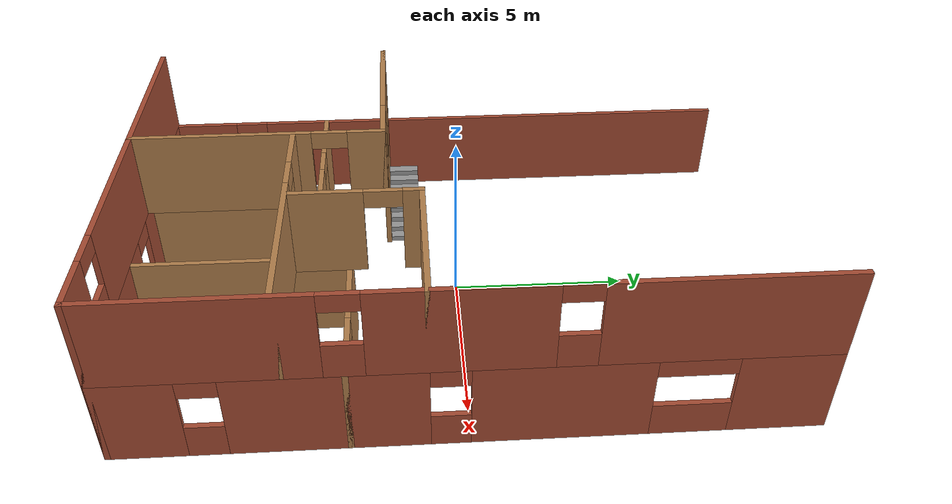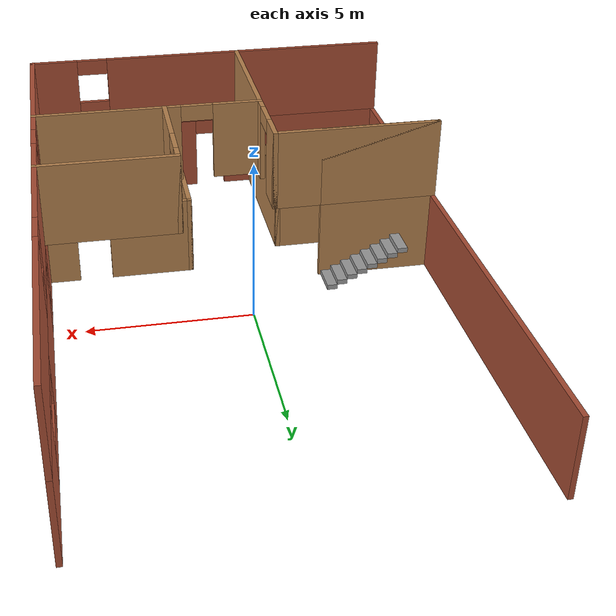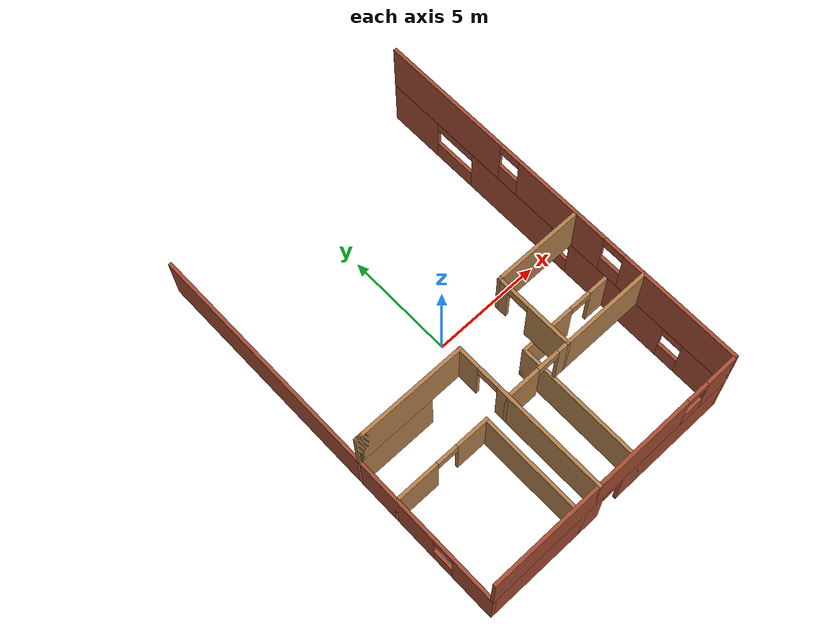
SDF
<sdf version="1.6">
 <model name="demo_model">
  <static>1</static>
  <link name="demo_wall_1_1">
   <pose>0 -9.0 0         0 0 0</pose>
   <visual name="demo_wall_1_1_0_left_visual">
    <pose>-3.2875 0 1.25 -0 0 0</pose>
    <geometry><box><size>5.575 0.15 2.5</size></box></geometry>
    <material>
     <script><uri>file://media/materials/scripts/gazebo.material</uri><name>Gazebo/Bricks</name></script>
    </material>
    <meta><layer>0</layer></meta>
   </visual>
   <collision name="demo_wall_1_1_0_left_collision">
    <pose>-3.2875 0 1.25 -0 0 0</pose>
    <geometry><box><size>5.575 0.15 2.5</size></box></geometry>
    <surface>
     <bounce><threshold>1e+06</threshold></bounce>
     <contact><ode><kp>1e+13</kp></ode><bullet><kp>1e+13</kp></bullet></contact>
    </surface>
   </collision>
   <visual name="demo_wall_1_1_0_up_visual">
    <pose>0.0 0 2.25 -0 0 0</pose>
    <geometry><box><size>1.0 0.15 0.5</size></box></geometry>
    <material>
     <script><uri>file://media/materials/scripts/gazebo.material</uri><name>Gazebo/Bricks</name></script>
    </material>
    <meta><layer>0</layer></meta>
   </visual>
   <collision name="demo_wall_1_1_0_up_collision">
    <pose>0.0 0 2.25 -0 0 0</pose>
    <geometry><box><size>1.0 0.15 0.5</size></box></geometry>
    <surface>
     <bounce><threshold>1e+06</threshold></bounce>
     <contact><ode><kp>1e+13</kp></ode><bullet><kp>1e+13</kp></bullet></contact>
    </surface>
   </collision>
   <visual name="demo_wall_1_1_0_right_visual">
    <pose>3.2874999999999996 0 1.25 -0 0 0</pose>
    <geometry><box><size>5.575 0.15 2.5</size></box></geometry>
    <material>
     <script><uri>file://media/materials/scripts/gazebo.material</uri><name>Gazebo/Bricks</name></script>
    </material>
    <meta><layer>0</layer></meta>
   </visual>
   <collision name="demo_wall_1_1_0_right_collision">
    <pose>3.2874999999999996 0 1.25 -0 0 0</pose>
    <geometry><box><size>5.575 0.15 2.5</size></box></geometry>
    <surface>
     <bounce><threshold>1e+06</threshold></bounce>
     <contact><ode><kp>1e+13</kp></ode><bullet><kp>1e+13</kp></bullet></contact>
    </surface>
   </collision>
  </link>
  <link name="demo_wall_1_2">
   <pose>6.0 0 0         0 0 1.5707963267948966</pose>
   <visual name="demo_wall_1_2_0_left_visual">
    <pose>-8.0375 0 1.25 -0 0 0</pose>
    <geometry><box><size>2.075 0.15 2.5</size></box></geometry>
    <material>
     <script><uri>file://media/materials/scripts/gazebo.material</uri><name>Gazebo/Bricks</name></script>
    </material>
    <meta><layer>0</layer></meta>
   </visual>
   <collision name="demo_wall_1_2_0_left_collision">
    <pose>-8.0375 0 1.25 -0 0 0</pose>
    <geometry><box><size>2.075 0.15 2.5</size></box></geometry>
    <surface>
     <bounce><threshold>1e+06</threshold></bounce>
     <contact><ode><kp>1e+13</kp></ode><bullet><kp>1e+13</kp></bullet></contact>
    </surface>
   </collision>
   <visual name="demo_wall_1_2_0_up_visual">
    <pose>-6.5 0 2.25 -0 0 0</pose>
    <geometry><box><size>1 0.15 0.5</size></box></geometry>
    <material>
     <script><uri>file://media/materials/scripts/gazebo.material</uri><name>Gazebo/Bricks</name></script>
    </material>
    <meta><layer>0</layer></meta>
   </visual>
   <collision name="demo_wall_1_2_0_up_collision">
    <pose>-6.5 0 2.25 -0 0 0</pose>
    <geometry><box><size>1 0.15 0.5</size></box></geometry>
    <surface>
     <bounce><threshold>1e+06</threshold></bounce>
     <contact><ode><kp>1e+13</kp></ode><bullet><kp>1e+13</kp></bullet></contact>
    </surface>
   </collision>
   <visual name="demo_wall_1_2_0_down_visual">
    <pose>-6.5 0 0.5 -0 0 0</pose>
    <geometry><box><size>1 0.15 1</size></box></geometry>
    <material>
     <script><uri>file://media/materials/scripts/gazebo.material</uri><name>Gazebo/Bricks</name></script>
    </material>
    <meta><layer>0</layer></meta>
   </visual>
   <collision name="demo_wall_1_2_0_down_collision">
    <pose>-6.5 0 0.5 -0 0 0</pose>
    <geometry><box><size>1 0.15 1</size></box></geometry>
    <surface>
     <bounce><threshold>1e+06</threshold></bounce>
     <contact><ode><kp>1e+13</kp></ode><bullet><kp>1e+13</kp></bullet></contact>
    </surface>
   </collision>
   <visual name="demo_wall_1_2_1_left_visual">
    <pose>-3.5 0 1.25 -0 0 0</pose>
    <geometry><box><size>5 0.15 2.5</size></box></geometry>
    <material>
     <script><uri>file://media/materials/scripts/gazebo.material</uri><name>Gazebo/Bricks</name></script>
    </material>
    <meta><layer>0</layer></meta>
   </visual>
   <collision name="demo_wall_1_2_1_left_collision">
    <pose>-3.5 0 1.25 -0 0 0</pose>
    <geometry><box><size>5 0.15 2.5</size></box></geometry>
    <surface>
     <bounce><threshold>1e+06</threshold></bounce>
     <contact><ode><kp>1e+13</kp></ode><bullet><kp>1e+13</kp></bullet></contact>
    </surface>
   </collision>
   <visual name="demo_wall_1_2_1_up_visual">
    <pose>-0.5 0 2.25 -0 0 0</pose>
    <geometry><box><size>1 0.15 0.5</size></box></geometry>
    <material>
     <script><uri>file://media/materials/scripts/gazebo.material</uri><name>Gazebo/Bricks</name></script>
    </material>
    <meta><layer>0</layer></meta>
   </visual>
   <collision name="demo_wall_1_2_1_up_collision">
    <pose>-0.5 0 2.25 -0 0 0</pose>
    <geometry><box><size>1 0.15 0.5</size></box></geometry>
    <surface>
     <bounce><threshold>1e+06</threshold></bounce>
     <contact><ode><kp>1e+13</kp></ode><bullet><kp>1e+13</kp></bullet></contact>
    </surface>
   </collision>
   <visual name="demo_wall_1_2_1_down_visual">
    <pose>-0.5 0 0.5 -0 0 0</pose>
    <geometry><box><size>1 0.15 1</size></box></geometry>
    <material>
     <script><uri>file://media/materials/scripts/gazebo.material</uri><name>Gazebo/Bricks</name></script>
    </material>
    <meta><layer>0</layer></meta>
   </visual>
   <collision name="demo_wall_1_2_1_down_collision">
    <pose>-0.5 0 0.5 -0 0 0</pose>
    <geometry><box><size>1 0.15 1</size></box></geometry>
    <surface>
     <bounce><threshold>1e+06</threshold></bounce>
     <contact><ode><kp>1e+13</kp></ode><bullet><kp>1e+13</kp></bullet></contact>
    </surface>
   </collision>
   <visual name="demo_wall_1_2_2_left_visual">
    <pose>2.25 0 1.25 -0 0 0</pose>
    <geometry><box><size>4.5 0.15 2.5</size></box></geometry>
    <material>
     <script><uri>file://media/materials/scripts/gazebo.material</uri><name>Gazebo/Bricks</name></script>
    </material>
    <meta><layer>0</layer></meta>
   </visual>
   <collision name="demo_wall_1_2_2_left_collision">
    <pose>2.25 0 1.25 -0 0 0</pose>
    <geometry><box><size>4.5 0.15 2.5</size></box></geometry>
    <surface>
     <bounce><threshold>1e+06</threshold></bounce>
     <contact><ode><kp>1e+13</kp></ode><bullet><kp>1e+13</kp></bullet></contact>
    </surface>
   </collision>
   <visual name="demo_wall_1_2_2_up_visual">
    <pose>5.5 0 2.25 -0 0 0</pose>
    <geometry><box><size>2.0 0.15 0.5</size></box></geometry>
    <material>
     <script><uri>file://media/materials/scripts/gazebo.material</uri><name>Gazebo/Bricks</name></script>
    </material>
    <meta><layer>0</layer></meta>
   </visual>
   <collision name="demo_wall_1_2_2_up_collision">
    <pose>5.5 0 2.25 -0 0 0</pose>
    <geometry><box><size>2.0 0.15 0.5</size></box></geometry>
    <surface>
     <bounce><threshold>1e+06</threshold></bounce>
     <contact><ode><kp>1e+13</kp></ode><bullet><kp>1e+13</kp></bullet></contact>
    </surface>
   </collision>
   <visual name="demo_wall_1_2_2_down_visual">
    <pose>5.5 0 0.5 -0 0 0</pose>
    <geometry><box><size>2.0 0.15 1</size></box></geometry>
    <material>
     <script><uri>file://media/materials/scripts/gazebo.material</uri><name>Gazebo/Bricks</name></script>
    </material>
    <meta><layer>0</layer></meta>
   </visual>
   <collision name="demo_wall_1_2_2_down_collision">
    <pose>5.5 0 0.5 -0 0 0</pose>
    <geometry><box><size>2.0 0.15 1</size></box></geometry>
    <surface>
     <bounce><threshold>1e+06</threshold></bounce>
     <contact><ode><kp>1e+13</kp></ode><bullet><kp>1e+13</kp></bullet></contact>
    </surface>
   </collision>
   <visual name="demo_wall_1_2_2_right_visual">
    <pose>7.787500000000001 0 1.25 -0 0 0</pose>
    <geometry><box><size>2.575 0.15 2.5</size></box></geometry>
    <material>
     <script><uri>file://media/materials/scripts/gazebo.material</uri><name>Gazebo/Bricks</name></script>
    </material>
    <meta><layer>0</layer></meta>
   </visual>
   <collision name="demo_wall_1_2_2_right_collision">
    <pose>7.787500000000001 0 1.25 -0 0 0</pose>
    <geometry><box><size>2.575 0.15 2.5</size></box></geometry>
    <surface>
     <bounce><threshold>1e+06</threshold></bounce>
     <contact><ode><kp>1e+13</kp></ode><bullet><kp>1e+13</kp></bullet></contact>
    </surface>
   </collision>
  </link>
  <link name="demo_wall_1_4">
   <pose>-6.0 0 0         0 0 -1.5707963267948966</pose>
   <visual name="demo_wall_1_4_0_left_visual">
    <pose>-1.5374999999999996 0 1.25 -0 0 0</pose>
    <geometry><box><size>15.075 0.15 2.5</size></box></geometry>
    <material>
     <script><uri>file://media/materials/scripts/gazebo.material</uri><name>Gazebo/Bricks</name></script>
    </material>
    <meta><layer>0</layer></meta>
   </visual>
   <collision name="demo_wall_1_4_0_left_collision">
    <pose>-1.5374999999999996 0 1.25 -0 0 0</pose>
    <geometry><box><size>15.075 0.15 2.5</size></box></geometry>
    <surface>
     <bounce><threshold>1e+06</threshold></bounce>
     <contact><ode><kp>1e+13</kp></ode><bullet><kp>1e+13</kp></bullet></contact>
    </surface>
   </collision>
   <visual name="demo_wall_1_4_0_up_visual">
    <pose>6.5 0 2.25 -0 0 0</pose>
    <geometry><box><size>1 0.15 0.5</size></box></geometry>
    <material>
     <script><uri>file://media/materials/scripts/gazebo.material</uri><name>Gazebo/Bricks</name></script>
    </material>
    <meta><layer>0</layer></meta>
   </visual>
   <collision name="demo_wall_1_4_0_up_collision">
    <pose>6.5 0 2.25 -0 0 0</pose>
    <geometry><box><size>1 0.15 0.5</size></box></geometry>
    <surface>
     <bounce><threshold>1e+06</threshold></bounce>
     <contact><ode><kp>1e+13</kp></ode><bullet><kp>1e+13</kp></bullet></contact>
    </surface>
   </collision>
   <visual name="demo_wall_1_4_0_down_visual">
    <pose>6.5 0 0.5 -0 0 0</pose>
    <geometry><box><size>1 0.15 1</size></box></geometry>
    <material>
     <script><uri>file://media/materials/scripts/gazebo.material</uri><name>Gazebo/Bricks</name></script>
    </material>
    <meta><layer>0</layer></meta>
   </visual>
   <collision name="demo_wall_1_4_0_down_collision">
    <pose>6.5 0 0.5 -0 0 0</pose>
    <geometry><box><size>1 0.15 1</size></box></geometry>
    <surface>
     <bounce><threshold>1e+06</threshold></bounce>
     <contact><ode><kp>1e+13</kp></ode><bullet><kp>1e+13</kp></bullet></contact>
    </surface>
   </collision>
   <visual name="demo_wall_1_4_0_right_visual">
    <pose>8.037500000000001 0 1.25 -0 0 0</pose>
    <geometry><box><size>2.075 0.15 2.5</size></box></geometry>
    <material>
     <script><uri>file://media/materials/scripts/gazebo.material</uri><name>Gazebo/Bricks</name></script>
    </material>
    <meta><layer>0</layer></meta>
   </visual>
   <collision name="demo_wall_1_4_0_right_collision">
    <pose>8.037500000000001 0 1.25 -0 0 0</pose>
    <geometry><box><size>2.075 0.15 2.5</size></box></geometry>
    <surface>
     <bounce><threshold>1e+06</threshold></bounce>
     <contact><ode><kp>1e+13</kp></ode><bullet><kp>1e+13</kp></bullet></contact>
    </surface>
   </collision>
  </link>
  <link name="demo_wall_2_1">
   <pose>0 -9.0 2.5         0 0 0</pose>
   <visual name="demo_wall_2_1_0_left_visual">
    <pose>-1.2874999999999996 0 1.25 -0 0 0</pose>
    <geometry><box><size>9.575 0.15 2.5</size></box></geometry>
    <material>
     <script><uri>file://media/materials/scripts/gazebo.material</uri><name>Gazebo/Bricks</name></script>
    </material>
    <meta><layer>1</layer></meta>
   </visual>
   <collision name="demo_wall_2_1_0_left_collision">
    <pose>-1.2874999999999996 0 1.25 -0 0 0</pose>
    <geometry><box><size>9.575 0.15 2.5</size></box></geometry>
    <surface>
     <bounce><threshold>1e+06</threshold></bounce>
     <contact><ode><kp>1e+13</kp></ode><bullet><kp>1e+13</kp></bullet></contact>
    </surface>
   </collision>
   <visual name="demo_wall_2_1_0_up_visual">
    <pose>4.0 0 2.25 -0 0 0</pose>
    <geometry><box><size>1.0 0.15 0.5</size></box></geometry>
    <material>
     <script><uri>file://media/materials/scripts/gazebo.material</uri><name>Gazebo/Bricks</name></script>
    </material>
    <meta><layer>1</layer></meta>
   </visual>
   <collision name="demo_wall_2_1_0_up_collision">
    <pose>4.0 0 2.25 -0 0 0</pose>
    <geometry><box><size>1.0 0.15 0.5</size></box></geometry>
    <surface>
     <bounce><threshold>1e+06</threshold></bounce>
     <contact><ode><kp>1e+13</kp></ode><bullet><kp>1e+13</kp></bullet></contact>
    </surface>
   </collision>
   <visual name="demo_wall_2_1_0_down_visual">
    <pose>4.0 0 0.5 -0 0 0</pose>
    <geometry><box><size>1.0 0.15 1</size></box></geometry>
    <material>
     <script><uri>file://media/materials/scripts/gazebo.material</uri><name>Gazebo/Bricks</name></script>
    </material>
    <meta><layer>1</layer></meta>
   </visual>
   <collision name="demo_wall_2_1_0_down_collision">
    <pose>4.0 0 0.5 -0 0 0</pose>
    <geometry><box><size>1.0 0.15 1</size></box></geometry>
    <surface>
     <bounce><threshold>1e+06</threshold></bounce>
     <contact><ode><kp>1e+13</kp></ode><bullet><kp>1e+13</kp></bullet></contact>
    </surface>
   </collision>
   <visual name="demo_wall_2_1_0_right_visual">
    <pose>5.2875 0 1.25 -0 0 0</pose>
    <geometry><box><size>1.575 0.15 2.5</size></box></geometry>
    <material>
     <script><uri>file://media/materials/scripts/gazebo.material</uri><name>Gazebo/Bricks</name></script>
    </material>
    <meta><layer>1</layer></meta>
   </visual>
   <collision name="demo_wall_2_1_0_right_collision">
    <pose>5.2875 0 1.25 -0 0 0</pose>
    <geometry><box><size>1.575 0.15 2.5</size></box></geometry>
    <surface>
     <bounce><threshold>1e+06</threshold></bounce>
     <contact><ode><kp>1e+13</kp></ode><bullet><kp>1e+13</kp></bullet></contact>
    </surface>
   </collision>
  </link>
  <link name="demo_wall_2_2">
   <pose>6.0 0 2.5         0 0 1.5707963267948966</pose>
   <visual name="demo_wall_2_2_0_left_visual">
    <pose>-6.2875 0 1.25 -0 0 0</pose>
    <geometry><box><size>5.575 0.15 2.5</size></box></geometry>
    <material>
     <script><uri>file://media/materials/scripts/gazebo.material</uri><name>Gazebo/Bricks</name></script>
    </material>
    <meta><layer>1</layer></meta>
   </visual>
   <collision name="demo_wall_2_2_0_left_collision">
    <pose>-6.2875 0 1.25 -0 0 0</pose>
    <geometry><box><size>5.575 0.15 2.5</size></box></geometry>
    <surface>
     <bounce><threshold>1e+06</threshold></bounce>
     <contact><ode><kp>1e+13</kp></ode><bullet><kp>1e+13</kp></bullet></contact>
    </surface>
   </collision>
   <visual name="demo_wall_2_2_0_up_visual">
    <pose>-3.0 0 2.25 -0 0 0</pose>
    <geometry><box><size>1.0 0.15 0.5</size></box></geometry>
    <material>
     <script><uri>file://media/materials/scripts/gazebo.material</uri><name>Gazebo/Bricks</name></script>
    </material>
    <meta><layer>1</layer></meta>
   </visual>
   <collision name="demo_wall_2_2_0_up_collision">
    <pose>-3.0 0 2.25 -0 0 0</pose>
    <geometry><box><size>1.0 0.15 0.5</size></box></geometry>
    <surface>
     <bounce><threshold>1e+06</threshold></bounce>
     <contact><ode><kp>1e+13</kp></ode><bullet><kp>1e+13</kp></bullet></contact>
    </surface>
   </collision>
   <visual name="demo_wall_2_2_0_down_visual">
    <pose>-3.0 0 0.5 -0 0 0</pose>
    <geometry><box><size>1.0 0.15 1</size></box></geometry>
    <material>
     <script><uri>file://media/materials/scripts/gazebo.material</uri><name>Gazebo/Bricks</name></script>
    </material>
    <meta><layer>1</layer></meta>
   </visual>
   <collision name="demo_wall_2_2_0_down_collision">
    <pose>-3.0 0 0.5 -0 0 0</pose>
    <geometry><box><size>1.0 0.15 1</size></box></geometry>
    <surface>
     <bounce><threshold>1e+06</threshold></bounce>
     <contact><ode><kp>1e+13</kp></ode><bullet><kp>1e+13</kp></bullet></contact>
    </surface>
   </collision>
   <visual name="demo_wall_2_2_1_left_visual">
    <pose>-0.25 0 1.25 -0 0 0</pose>
    <geometry><box><size>4.5 0.15 2.5</size></box></geometry>
    <material>
     <script><uri>file://media/materials/scripts/gazebo.material</uri><name>Gazebo/Bricks</name></script>
    </material>
    <meta><layer>1</layer></meta>
   </visual>
   <collision name="demo_wall_2_2_1_left_collision">
    <pose>-0.25 0 1.25 -0 0 0</pose>
    <geometry><box><size>4.5 0.15 2.5</size></box></geometry>
    <surface>
     <bounce><threshold>1e+06</threshold></bounce>
     <contact><ode><kp>1e+13</kp></ode><bullet><kp>1e+13</kp></bullet></contact>
    </surface>
   </collision>
   <visual name="demo_wall_2_2_1_up_visual">
    <pose>2.5 0 2.25 -0 0 0</pose>
    <geometry><box><size>1 0.15 0.5</size></box></geometry>
    <material>
     <script><uri>file://media/materials/scripts/gazebo.material</uri><name>Gazebo/Bricks</name></script>
    </material>
    <meta><layer>1</layer></meta>
   </visual>
   <collision name="demo_wall_2_2_1_up_collision">
    <pose>2.5 0 2.25 -0 0 0</pose>
    <geometry><box><size>1 0.15 0.5</size></box></geometry>
    <surface>
     <bounce><threshold>1e+06</threshold></bounce>
     <contact><ode><kp>1e+13</kp></ode><bullet><kp>1e+13</kp></bullet></contact>
    </surface>
   </collision>
   <visual name="demo_wall_2_2_1_down_visual">
    <pose>2.5 0 0.5 -0 0 0</pose>
    <geometry><box><size>1 0.15 1</size></box></geometry>
    <material>
     <script><uri>file://media/materials/scripts/gazebo.material</uri><name>Gazebo/Bricks</name></script>
    </material>
    <meta><layer>1</layer></meta>
   </visual>
   <collision name="demo_wall_2_2_1_down_collision">
    <pose>2.5 0 0.5 -0 0 0</pose>
    <geometry><box><size>1 0.15 1</size></box></geometry>
    <surface>
     <bounce><threshold>1e+06</threshold></bounce>
     <contact><ode><kp>1e+13</kp></ode><bullet><kp>1e+13</kp></bullet></contact>
    </surface>
   </collision>
   <visual name="demo_wall_2_2_1_right_visual">
    <pose>6.0375 0 1.25 -0 0 0</pose>
    <geometry><box><size>6.075 0.15 2.5</size></box></geometry>
    <material>
     <script><uri>file://media/materials/scripts/gazebo.material</uri><name>Gazebo/Bricks</name></script>
    </material>
    <meta><layer>1</layer></meta>
   </visual>
   <collision name="demo_wall_2_2_1_right_collision">
    <pose>6.0375 0 1.25 -0 0 0</pose>
    <geometry><box><size>6.075 0.15 2.5</size></box></geometry>
    <surface>
     <bounce><threshold>1e+06</threshold></bounce>
     <contact><ode><kp>1e+13</kp></ode><bullet><kp>1e+13</kp></bullet></contact>
    </surface>
   </collision>
  </link>
  <link name="demo_wall_1_6">
   <pose>-4.25 -2 0         0 0 0</pose>
   <visual name="demo_wall_1_6_visual">
    <pose>0 0 1.25 -0 0 0</pose>
    <geometry><box><size>3.65 0.15 2.5</size></box></geometry>
    <material>
     <script><uri>file://media/materials/scripts/gazebo.material</uri><name>Gazebo/Wood</name></script>
    </material>
    <meta><layer>0</layer></meta>
   </visual>
   <collision name="demo_wall_1_6_collision">
    <pose>0 0 1.25 -0 0 0</pose>
    <geometry><box><size>3.65 0.15 2.5</size></box></geometry>
    <surface>
     <bounce><threshold>1e+06</threshold></bounce>
     <contact><ode><kp>1e+13</kp></ode><bullet><kp>1e+13</kp></bullet></contact>
    </surface>
   </collision>
  </link>
  <link name="demo_wall_1_7">
   <pose>-3.75 -4 0         0 0 0</pose>
   <visual name="demo_wall_1_7_0_left_visual">
    <pose>-1.2875 0 1.25 -0 0 0</pose>
    <geometry><box><size>2.075 0.15 2.5</size></box></geometry>
    <material>
     <script><uri>file://media/materials/scripts/gazebo.material</uri><name>Gazebo/Wood</name></script>
    </material>
    <meta><layer>0</layer></meta>
   </visual>
   <collision name="demo_wall_1_7_0_left_collision">
    <pose>-1.2875 0 1.25 -0 0 0</pose>
    <geometry><box><size>2.075 0.15 2.5</size></box></geometry>
    <surface>
     <bounce><threshold>1e+06</threshold></bounce>
     <contact><ode><kp>1e+13</kp></ode><bullet><kp>1e+13</kp></bullet></contact>
    </surface>
   </collision>
   <visual name="demo_wall_1_7_0_up_visual">
    <pose>0.25 0 2.25 -0 0 0</pose>
    <geometry><box><size>1 0.15 0.5</size></box></geometry>
    <material>
     <script><uri>file://media/materials/scripts/gazebo.material</uri><name>Gazebo/Wood</name></script>
    </material>
    <meta><layer>0</layer></meta>
   </visual>
   <collision name="demo_wall_1_7_0_up_collision">
    <pose>0.25 0 2.25 -0 0 0</pose>
    <geometry><box><size>1 0.15 0.5</size></box></geometry>
    <surface>
     <bounce><threshold>1e+06</threshold></bounce>
     <contact><ode><kp>1e+13</kp></ode><bullet><kp>1e+13</kp></bullet></contact>
    </surface>
   </collision>
   <visual name="demo_wall_1_7_0_right_visual">
    <pose>1.5375 0 1.25 -0 0 0</pose>
    <geometry><box><size>1.575 0.15 2.5</size></box></geometry>
    <material>
     <script><uri>file://media/materials/scripts/gazebo.material</uri><name>Gazebo/Wood</name></script>
    </material>
    <meta><layer>0</layer></meta>
   </visual>
   <collision name="demo_wall_1_7_0_right_collision">
    <pose>1.5375 0 1.25 -0 0 0</pose>
    <geometry><box><size>1.575 0.15 2.5</size></box></geometry>
    <surface>
     <bounce><threshold>1e+06</threshold></bounce>
     <contact><ode><kp>1e+13</kp></ode><bullet><kp>1e+13</kp></bullet></contact>
    </surface>
   </collision>
  </link>
  <link name="demo_wall_1_8">
   <pose>-1.5 -6.5 0         0 0 1.5707963267948966</pose>
   <visual name="demo_wall_1_8_visual">
    <pose>0 0 1.25 -0 0 0</pose>
    <geometry><box><size>5.15 0.15 2.5</size></box></geometry>
    <material>
     <script><uri>file://media/materials/scripts/gazebo.material</uri><name>Gazebo/Wood</name></script>
    </material>
    <meta><layer>0</layer></meta>
   </visual>
   <collision name="demo_wall_1_8_collision">
    <pose>0 0 1.25 -0 0 0</pose>
    <geometry><box><size>5.15 0.15 2.5</size></box></geometry>
    <surface>
     <bounce><threshold>1e+06</threshold></bounce>
     <contact><ode><kp>1e+13</kp></ode><bullet><kp>1e+13</kp></bullet></contact>
    </surface>
   </collision>
  </link>
  <link name="demo_wall_1_9">
   <pose>3.75 -3 0         0 0 0</pose>
   <visual name="demo_wall_1_9_0_left_visual">
    <pose>-1.0375 0 1.25 -0 0 0</pose>
    <geometry><box><size>2.575 0.15 2.5</size></box></geometry>
    <material>
     <script><uri>file://media/materials/scripts/gazebo.material</uri><name>Gazebo/Wood</name></script>
    </material>
    <meta><layer>0</layer></meta>
   </visual>
   <collision name="demo_wall_1_9_0_left_collision">
    <pose>-1.0375 0 1.25 -0 0 0</pose>
    <geometry><box><size>2.575 0.15 2.5</size></box></geometry>
    <surface>
     <bounce><threshold>1e+06</threshold></bounce>
     <contact><ode><kp>1e+13</kp></ode><bullet><kp>1e+13</kp></bullet></contact>
    </surface>
   </collision>
   <visual name="demo_wall_1_9_0_up_visual">
    <pose>0.75 0 2.25 -0 0 0</pose>
    <geometry><box><size>1.0 0.15 0.5</size></box></geometry>
    <material>
     <script><uri>file://media/materials/scripts/gazebo.material</uri><name>Gazebo/Wood</name></script>
    </material>
    <meta><layer>0</layer></meta>
   </visual>
   <collision name="demo_wall_1_9_0_up_collision">
    <pose>0.75 0 2.25 -0 0 0</pose>
    <geometry><box><size>1.0 0.15 0.5</size></box></geometry>
    <surface>
     <bounce><threshold>1e+06</threshold></bounce>
     <contact><ode><kp>1e+13</kp></ode><bullet><kp>1e+13</kp></bullet></contact>
    </surface>
   </collision>
   <visual name="demo_wall_1_9_0_right_visual">
    <pose>1.7874999999999996 0 1.25 -0 0 0</pose>
    <geometry><box><size>1.075 0.15 2.5</size></box></geometry>
    <material>
     <script><uri>file://media/materials/scripts/gazebo.material</uri><name>Gazebo/Wood</name></script>
    </material>
    <meta><layer>0</layer></meta>
   </visual>
   <collision name="demo_wall_1_9_0_right_collision">
    <pose>1.7874999999999996 0 1.25 -0 0 0</pose>
    <geometry><box><size>1.075 0.15 2.5</size></box></geometry>
    <surface>
     <bounce><threshold>1e+06</threshold></bounce>
     <contact><ode><kp>1e+13</kp></ode><bullet><kp>1e+13</kp></bullet></contact>
    </surface>
   </collision>
  </link>
  <link name="demo_wall_1_10">
   <pose>1.5 -6 0         0 0 1.5707963267948966</pose>
   <visual name="demo_wall_1_10_visual">
    <pose>0 0 1.25 -0 0 0</pose>
    <geometry><box><size>6.15 0.15 2.5</size></box></geometry>
    <material>
     <script><uri>file://media/materials/scripts/gazebo.material</uri><name>Gazebo/Wood</name></script>
    </material>
    <meta><layer>0</layer></meta>
   </visual>
   <collision name="demo_wall_1_10_collision">
    <pose>0 0 1.25 -0 0 0</pose>
    <geometry><box><size>6.15 0.15 2.5</size></box></geometry>
    <surface>
     <bounce><threshold>1e+06</threshold></bounce>
     <contact><ode><kp>1e+13</kp></ode><bullet><kp>1e+13</kp></bullet></contact>
    </surface>
   </collision>
  </link>
  <link name="demo_wall_2_6">
   <pose>-4.25 -2 2.5         0 0 0</pose>
   <visual name="demo_wall_2_6_visual">
    <pose>0 0 1.25 -0 0 0</pose>
    <geometry><box><size>3.65 0.15 2.5</size></box></geometry>
    <material>
     <script><uri>file://media/materials/scripts/gazebo.material</uri><name>Gazebo/Wood</name></script>
    </material>
    <meta><layer>1</layer></meta>
   </visual>
   <collision name="demo_wall_2_6_collision">
    <pose>0 0 1.25 -0 0 0</pose>
    <geometry><box><size>3.65 0.15 2.5</size></box></geometry>
    <surface>
     <bounce><threshold>1e+06</threshold></bounce>
     <contact><ode><kp>1e+13</kp></ode><bullet><kp>1e+13</kp></bullet></contact>
    </surface>
   </collision>
  </link>
  <link name="demo_wall_2_8">
   <pose>-3.5 -2 2.5         0 0 0</pose>
   <visual name="demo_wall_2_8_visual">
    <pose>0 0 1.25 -0 0 0</pose>
    <geometry><box><size>5.15 0.15 2.5</size></box></geometry>
    <material>
     <script><uri>file://media/materials/scripts/gazebo.material</uri><name>Gazebo/Wood</name></script>
    </material>
    <meta><layer>1</layer></meta>
   </visual>
   <collision name="demo_wall_2_8_collision">
    <pose>0 0 1.25 -0 0 0</pose>
    <geometry><box><size>5.15 0.15 2.5</size></box></geometry>
    <surface>
     <bounce><threshold>1e+06</threshold></bounce>
     <contact><ode><kp>1e+13</kp></ode><bullet><kp>1e+13</kp></bullet></contact>
    </surface>
   </collision>
  </link>
  <link name="demo_wall_2_9">
   <pose>-1 -5.5 2.5         0 0 1.5707963267948966</pose>
   <visual name="demo_wall_2_9_0_left_visual">
    <pose>-1.0375 0 1.25 -0 0 0</pose>
    <geometry><box><size>5.075 0.15 2.5</size></box></geometry>
    <material>
     <script><uri>file://media/materials/scripts/gazebo.material</uri><name>Gazebo/Wood</name></script>
    </material>
    <meta><layer>1</layer></meta>
   </visual>
   <collision name="demo_wall_2_9_0_left_collision">
    <pose>-1.0375 0 1.25 -0 0 0</pose>
    <geometry><box><size>5.075 0.15 2.5</size></box></geometry>
    <surface>
     <bounce><threshold>1e+06</threshold></bounce>
     <contact><ode><kp>1e+13</kp></ode><bullet><kp>1e+13</kp></bullet></contact>
    </surface>
   </collision>
   <visual name="demo_wall_2_9_0_up_visual">
    <pose>2.0 0 2.25 -0 0 0</pose>
    <geometry><box><size>1 0.15 0.5</size></box></geometry>
    <material>
     <script><uri>file://media/materials/scripts/gazebo.material</uri><name>Gazebo/Wood</name></script>
    </material>
    <meta><layer>1</layer></meta>
   </visual>
   <collision name="demo_wall_2_9_0_up_collision">
    <pose>2.0 0 2.25 -0 0 0</pose>
    <geometry><box><size>1 0.15 0.5</size></box></geometry>
    <surface>
     <bounce><threshold>1e+06</threshold></bounce>
     <contact><ode><kp>1e+13</kp></ode><bullet><kp>1e+13</kp></bullet></contact>
    </surface>
   </collision>
   <visual name="demo_wall_2_9_0_right_visual">
    <pose>3.0374999999999996 0 1.25 -0 0 0</pose>
    <geometry><box><size>1.075 0.15 2.5</size></box></geometry>
    <material>
     <script><uri>file://media/materials/scripts/gazebo.material</uri><name>Gazebo/Wood</name></script>
    </material>
    <meta><layer>1</layer></meta>
   </visual>
   <collision name="demo_wall_2_9_0_right_collision">
    <pose>3.0374999999999996 0 1.25 -0 0 0</pose>
    <geometry><box><size>1.075 0.15 2.5</size></box></geometry>
    <surface>
     <bounce><threshold>1e+06</threshold></bounce>
     <contact><ode><kp>1e+13</kp></ode><bullet><kp>1e+13</kp></bullet></contact>
    </surface>
   </collision>
  </link>
  <link name="demo_wall_2_10">
   <pose>2.5 -4.5 2.5         0 0 0</pose>
   <visual name="demo_wall_2_10_0_left_visual">
    <pose>-2.7875 0 1.25 -0 0 0</pose>
    <geometry><box><size>1.575 0.15 2.5</size></box></geometry>
    <material>
     <script><uri>file://media/materials/scripts/gazebo.material</uri><name>Gazebo/Wood</name></script>
    </material>
    <meta><layer>1</layer></meta>
   </visual>
   <collision name="demo_wall_2_10_0_left_collision">
    <pose>-2.7875 0 1.25 -0 0 0</pose>
    <geometry><box><size>1.575 0.15 2.5</size></box></geometry>
    <surface>
     <bounce><threshold>1e+06</threshold></bounce>
     <contact><ode><kp>1e+13</kp></ode><bullet><kp>1e+13</kp></bullet></contact>
    </surface>
   </collision>
   <visual name="demo_wall_2_10_0_up_visual">
    <pose>-1.5 0 2.25 -0 0 0</pose>
    <geometry><box><size>1.0 0.15 0.5</size></box></geometry>
    <material>
     <script><uri>file://media/materials/scripts/gazebo.material</uri><name>Gazebo/Wood</name></script>
    </material>
    <meta><layer>1</layer></meta>
   </visual>
   <collision name="demo_wall_2_10_0_up_collision">
    <pose>-1.5 0 2.25 -0 0 0</pose>
    <geometry><box><size>1.0 0.15 0.5</size></box></geometry>
    <surface>
     <bounce><threshold>1e+06</threshold></bounce>
     <contact><ode><kp>1e+13</kp></ode><bullet><kp>1e+13</kp></bullet></contact>
    </surface>
   </collision>
   <visual name="demo_wall_2_10_0_right_visual">
    <pose>1.2874999999999996 0 1.25 -0 0 0</pose>
    <geometry><box><size>4.575 0.15 2.5</size></box></geometry>
    <material>
     <script><uri>file://media/materials/scripts/gazebo.material</uri><name>Gazebo/Wood</name></script>
    </material>
    <meta><layer>1</layer></meta>
   </visual>
   <collision name="demo_wall_2_10_0_right_collision">
    <pose>1.2874999999999996 0 1.25 -0 0 0</pose>
    <geometry><box><size>4.575 0.15 2.5</size></box></geometry>
    <surface>
     <bounce><threshold>1e+06</threshold></bounce>
     <contact><ode><kp>1e+13</kp></ode><bullet><kp>1e+13</kp></bullet></contact>
    </surface>
   </collision>
  </link>
  <link name="demo_wall_2_11">
   <pose>4 -1 2.5         0 0 0</pose>
   <visual name="demo_wall_2_11_visual">
    <pose>0 0 1.25 -0 0 0</pose>
    <geometry><box><size>4.15 0.15 2.5</size></box></geometry>
    <material>
     <script><uri>file://media/materials/scripts/gazebo.material</uri><name>Gazebo/Wood</name></script>
    </material>
    <meta><layer>1</layer></meta>
   </visual>
   <collision name="demo_wall_2_11_collision">
    <pose>0 0 1.25 -0 0 0</pose>
    <geometry><box><size>4.15 0.15 2.5</size></box></geometry>
    <surface>
     <bounce><threshold>1e+06</threshold></bounce>
     <contact><ode><kp>1e+13</kp></ode><bullet><kp>1e+13</kp></bullet></contact>
    </surface>
   </collision>
  </link>
  <link name="demo_wall_2_12">
   <pose>2 -2.75 2.5         0 0 1.5707963267948966</pose>
   <visual name="demo_wall_2_12_0_left_visual">
    <pose>-0.7875 0 1.25 -0 0 0</pose>
    <geometry><box><size>2.075 0.15 2.5</size></box></geometry>
    <material>
     <script><uri>file://media/materials/scripts/gazebo.material</uri><name>Gazebo/Wood</name></script>
    </material>
    <meta><layer>1</layer></meta>
   </visual>
   <collision name="demo_wall_2_12_0_left_collision">
    <pose>-0.7875 0 1.25 -0 0 0</pose>
    <geometry><box><size>2.075 0.15 2.5</size></box></geometry>
    <surface>
     <bounce><threshold>1e+06</threshold></bounce>
     <contact><ode><kp>1e+13</kp></ode><bullet><kp>1e+13</kp></bullet></contact>
    </surface>
   </collision>
   <visual name="demo_wall_2_12_0_up_visual">
    <pose>0.75 0 2.25 -0 0 0</pose>
    <geometry><box><size>1 0.15 0.5</size></box></geometry>
    <material>
     <script><uri>file://media/materials/scripts/gazebo.material</uri><name>Gazebo/Wood</name></script>
    </material>
    <meta><layer>1</layer></meta>
   </visual>
   <collision name="demo_wall_2_12_0_up_collision">
    <pose>0.75 0 2.25 -0 0 0</pose>
    <geometry><box><size>1 0.15 0.5</size></box></geometry>
    <surface>
     <bounce><threshold>1e+06</threshold></bounce>
     <contact><ode><kp>1e+13</kp></ode><bullet><kp>1e+13</kp></bullet></contact>
    </surface>
   </collision>
   <visual name="demo_wall_2_12_0_right_visual">
    <pose>1.5375 0 1.25 -0 0 0</pose>
    <geometry><box><size>0.575 0.15 2.5</size></box></geometry>
    <material>
     <script><uri>file://media/materials/scripts/gazebo.material</uri><name>Gazebo/Wood</name></script>
    </material>
    <meta><layer>1</layer></meta>
   </visual>
   <collision name="demo_wall_2_12_0_right_collision">
    <pose>1.5375 0 1.25 -0 0 0</pose>
    <geometry><box><size>0.575 0.15 2.5</size></box></geometry>
    <surface>
     <bounce><threshold>1e+06</threshold></bounce>
     <contact><ode><kp>1e+13</kp></ode><bullet><kp>1e+13</kp></bullet></contact>
    </surface>
   </collision>
  </link>
  <link name="demo_stair2">
   <pose>-3.75 -1.5 0         0 0 1.5707963267948966</pose>
   <visual name="demo_stair2_0_visual">
    <pose>0 -1.09375 0.078125 -0 0 0</pose>
    <geometry><box><size>1 0.3125 0.15625</size></box></geometry>
    <material>
     <script><uri>file://media/materials/scripts/gazebo.material</uri><name>Gazebo/Grey</name></script>
    </material>
    <meta><layer>0</layer></meta>
   </visual>
   <collision name="demo_stair2_0_collision">
    <pose>0 -1.09375 0.078125 -0 0 0</pose>
    <geometry><box><size>1 0.3125 0.15625</size></box></geometry>
    <surface>
     <bounce><threshold>1e+06</threshold></bounce>
     <contact><ode><kp>1e+13</kp></ode><bullet><kp>1e+13</kp></bullet></contact>
    </surface>
   </collision>
   <visual name="demo_stair2_1_visual">
    <pose>0 -0.78125 0.234375 -0 0 0</pose>
    <geometry><box><size>1 0.3125 0.15625</size></box></geometry>
    <material>
     <script><uri>file://media/materials/scripts/gazebo.material</uri><name>Gazebo/Grey</name></script>
    </material>
    <meta><layer>0</layer></meta>
   </visual>
   <collision name="demo_stair2_1_collision">
    <pose>0 -0.78125 0.234375 -0 0 0</pose>
    <geometry><box><size>1 0.3125 0.15625</size></box></geometry>
    <surface>
     <bounce><threshold>1e+06</threshold></bounce>
     <contact><ode><kp>1e+13</kp></ode><bullet><kp>1e+13</kp></bullet></contact>
    </surface>
   </collision>
   <visual name="demo_stair2_2_visual">
    <pose>0 -0.46875 0.390625 -0 0 0</pose>
    <geometry><box><size>1 0.3125 0.15625</size></box></geometry>
    <material>
     <script><uri>file://media/materials/scripts/gazebo.material</uri><name>Gazebo/Grey</name></script>
    </material>
    <meta><layer>0</layer></meta>
   </visual>
   <collision name="demo_stair2_2_collision">
    <pose>0 -0.46875 0.390625 -0 0 0</pose>
    <geometry><box><size>1 0.3125 0.15625</size></box></geometry>
    <surface>
     <bounce><threshold>1e+06</threshold></bounce>
     <contact><ode><kp>1e+13</kp></ode><bullet><kp>1e+13</kp></bullet></contact>
    </surface>
   </collision>
   <visual name="demo_stair2_3_visual">
    <pose>0 -0.15625 0.546875 -0 0 0</pose>
    <geometry><box><size>1 0.3125 0.15625</size></box></geometry>
    <material>
     <script><uri>file://media/materials/scripts/gazebo.material</uri><name>Gazebo/Grey</name></script>
    </material>
    <meta><layer>0</layer></meta>
   </visual>
   <collision name="demo_stair2_3_collision">
    <pose>0 -0.15625 0.546875 -0 0 0</pose>
    <geometry><box><size>1 0.3125 0.15625</size></box></geometry>
    <surface>
     <bounce><threshold>1e+06</threshold></bounce>
     <contact><ode><kp>1e+13</kp></ode><bullet><kp>1e+13</kp></bullet></contact>
    </surface>
   </collision>
   <visual name="demo_stair2_4_visual">
    <pose>0 0.15625 0.703125 -0 0 0</pose>
    <geometry><box><size>1 0.3125 0.15625</size></box></geometry>
    <material>
     <script><uri>file://media/materials/scripts/gazebo.material</uri><name>Gazebo/Grey</name></script>
    </material>
    <meta><layer>0</layer></meta>
   </visual>
   <collision name="demo_stair2_4_collision">
    <pose>0 0.15625 0.703125 -0 0 0</pose>
    <geometry><box><size>1 0.3125 0.15625</size></box></geometry>
    <surface>
     <bounce><threshold>1e+06</threshold></bounce>
     <contact><ode><kp>1e+13</kp></ode><bullet><kp>1e+13</kp></bullet></contact>
    </surface>
   </collision>
   <visual name="demo_stair2_5_visual">
    <pose>0 0.46875 0.859375 -0 0 0</pose>
    <geometry><box><size>1 0.3125 0.15625</size></box></geometry>
    <material>
     <script><uri>file://media/materials/scripts/gazebo.material</uri><name>Gazebo/Grey</name></script>
    </material>
    <meta><layer>0</layer></meta>
   </visual>
   <collision name="demo_stair2_5_collision">
    <pose>0 0.46875 0.859375 -0 0 0</pose>
    <geometry><box><size>1 0.3125 0.15625</size></box></geometry>
    <surface>
     <bounce><threshold>1e+06</threshold></bounce>
     <contact><ode><kp>1e+13</kp></ode><bullet><kp>1e+13</kp></bullet></contact>
    </surface>
   </collision>
   <visual name="demo_stair2_6_visual">
    <pose>0 0.78125 1.015625 -0 0 0</pose>
    <geometry><box><size>1 0.3125 0.15625</size></box></geometry>
    <material>
     <script><uri>file://media/materials/scripts/gazebo.material</uri><name>Gazebo/Grey</name></script>
    </material>
    <meta><layer>0</layer></meta>
   </visual>
   <collision name="demo_stair2_6_collision">
    <pose>0 0.78125 1.015625 -0 0 0</pose>
    <geometry><box><size>1 0.3125 0.15625</size></box></geometry>
    <surface>
     <bounce><threshold>1e+06</threshold></bounce>
     <contact><ode><kp>1e+13</kp></ode><bullet><kp>1e+13</kp></bullet></contact>
    </surface>
   </collision>
   <visual name="demo_stair2_7_visual">
    <pose>0 1.09375 1.171875 -0 0 0</pose>
    <geometry><box><size>1 0.3125 0.15625</size></box></geometry>
    <material>
     <script><uri>file://media/materials/scripts/gazebo.material</uri><name>Gazebo/Grey</name></script>
    </material>
    <meta><layer>0</layer></meta>
   </visual>
   <collision name="demo_stair2_7_collision">
    <pose>0 1.09375 1.171875 -0 0 0</pose>
    <geometry><box><size>1 0.3125 0.15625</size></box></geometry>
    <surface>
     <bounce><threshold>1e+06</threshold></bounce>
     <contact><ode><kp>1e+13</kp></ode><bullet><kp>1e+13</kp></bullet></contact>
    </surface>
   </collision>
  </link>
 </model>
</sdf>
